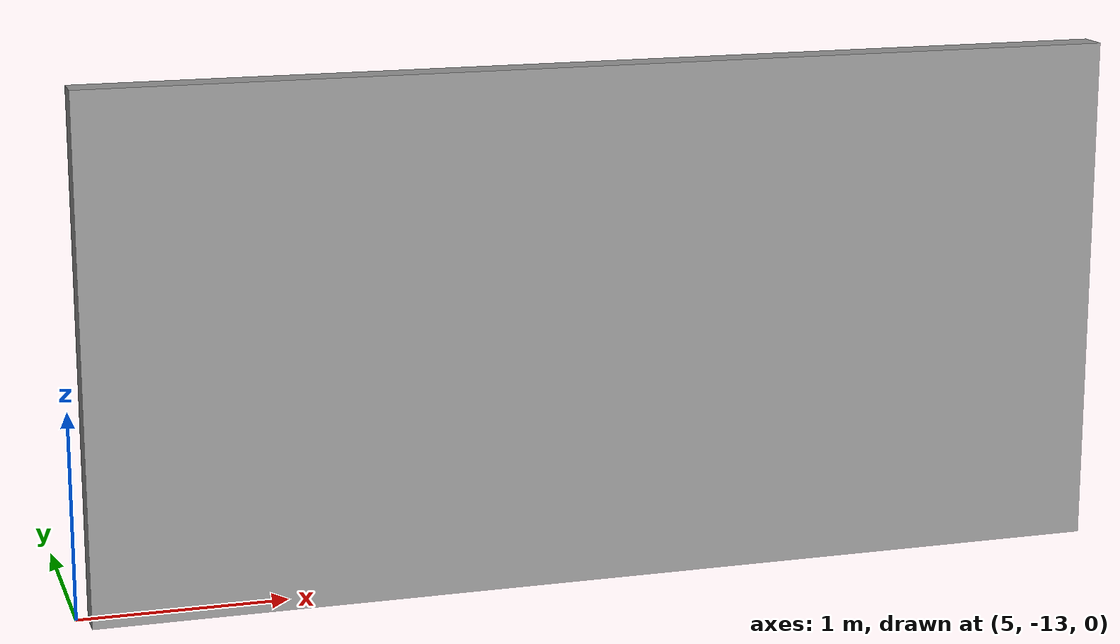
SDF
<?xml version='1.0'?>
<sdf version='1.7'>
  <model name='whitewall'>
    <pose>5.0275 -6.5725 0 0 -0 0</pose>
    <link name='Wall_0'>
      <collision name='Wall_0_Collision'>
        <geometry>
          <box>
            <size>5 0.15 2.5</size>
          </box>
        </geometry>
        <pose>0 0 1.25 0 -0 0</pose>
      </collision>
      <visual name='Wall_0_Visual'>
        <pose>0 0 1.25 0 -0 0</pose>
        <geometry>
          <box>
            <size>5 0.15 2.5</size>
          </box>
        </geometry>
        <material>
          <script>
            <uri>file://media/materials/scripts/gazebo.material</uri>
            <name>Gazebo/Grey</name>
          </script>
          <ambient>1 1 1 1</ambient>
        </material>
        <meta>
          <layer>0</layer>
        </meta>
      </visual>
      <pose>2.5275 -6.4975 0 0 -0 3.14159</pose>
    </link>
    <static>1</static>
  </model>
</sdf>
